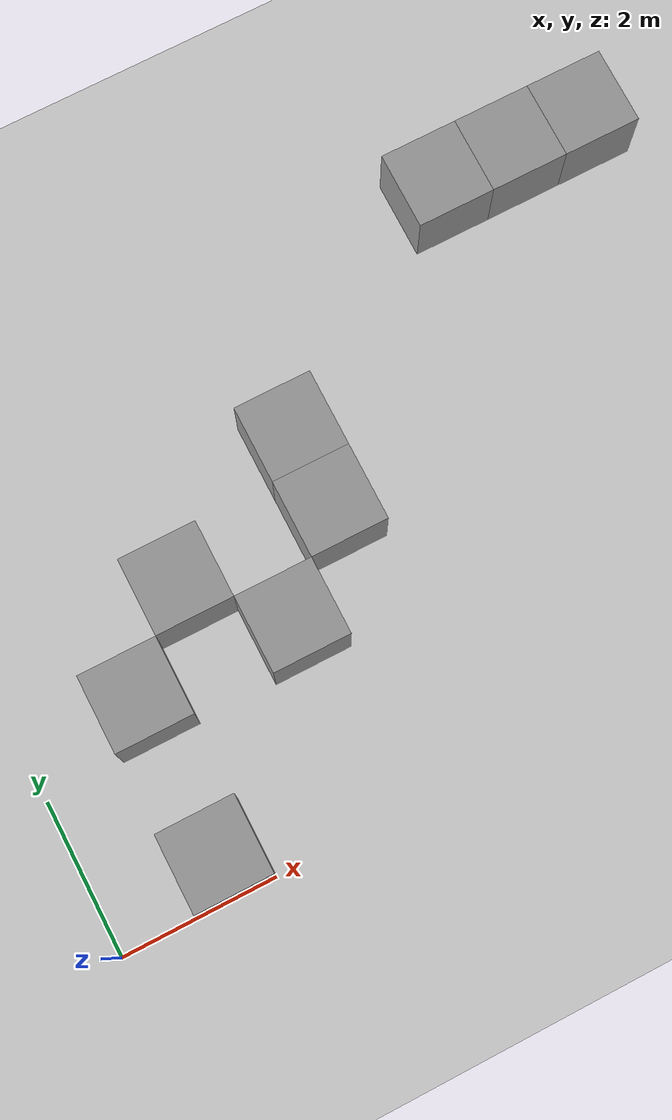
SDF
<sdf version="1.6">
 <world name="default">
  <light name="sun" type="directional">
   <pose>0 0 10 0 -0 0</pose>
   <diffuse>0.8 0.8 0.8 1</diffuse>
   <specular>0.1 0.1 0.1 1</specular>
   <attenuation>
    <range>1000</range>
    <constant>0.9</constant>
    <linear>0.01</linear>
    <quadratic>0.001</quadratic>
   </attenuation>
   <direction>-0.5 0.5 -1</direction>
  </light>
  <model name="ground_plane">
   <static>1</static>
   <link name="link">
    <collision name="collision">
     <geometry><plane><normal>0 0 1</normal><size>100 100</size></plane></geometry>
     <surface><friction><ode><mu>100</mu><mu2>50</mu2></ode></friction></surface>
    </collision>
    <visual name="visual">
     <cast_shadows>0</cast_shadows>
     <geometry><plane><normal>0 0 1</normal><size>100 100</size></plane></geometry>
     <material>
      <script><uri>file://media/materials/scripts/gazebo.material</uri><name>Gazebo/Grey</name></script>
     </material>
    </visual>
   </link>
  </model>
  <gravity>0 0 -9.8</gravity>
  <magnetic_field>6e-06 2.3e-05 -4.2e-05</magnetic_field>
  <atmosphere type="adiabatic"/>
  <physics name="default_physics" default="0" type="ode">
   <max_step_size>0.001</max_step_size>
   <real_time_factor>1</real_time_factor>
   <real_time_update_rate>1000</real_time_update_rate>
  </physics>
  <scene><ambient>0.4 0.4 0.4 1</ambient><background>0.7 0.7 0.7 1</background><shadows>1</shadows></scene>
  <spherical_coordinates>
   <surface_model>EARTH_WGS84</surface_model>
   <latitude_deg>0</latitude_deg>
   <longitude_deg>0</longitude_deg>
   <elevation>0</elevation>
   <heading_deg>0</heading_deg>
  </spherical_coordinates>
  <light name="user_point_light_0" type="point">
   <pose>4.8795 4.19874 1 0 -0 0</pose>
   <diffuse>0.5 0.5 0.5 1</diffuse>
   <specular>0.1 0.1 0.1 1</specular>
   <attenuation>
    <range>20</range>
    <constant>0.5</constant>
    <linear>0.01</linear>
    <quadratic>0.001</quadratic>
   </attenuation>
   <cast_shadows>0</cast_shadows>
   <direction>0 0 -1</direction>
  </light>
  <model name="unit_box_0">
   <pose>1.49999 0.5 0.499995 0 -1e-05 0</pose>
   <link name="link">
    <inertial>
     <mass>1</mass>
     <inertia>
      <ixx>0.166667</ixx>
      <ixy>0</ixy>
      <ixz>0</ixz>
      <iyy>0.166667</iyy>
      <iyz>0</iyz>
      <izz>0.166667</izz>
     </inertia>
    </inertial>
    <collision name="collision"><geometry><box><size>1 1 1</size></box></geometry></collision>
    <visual name="visual">
     <geometry><box><size>1 1 1</size></box></geometry>
     <material>
      <script><name>Gazebo/Grey</name><uri>file://media/materials/scripts/gazebo.material</uri></script>
     </material>
    </visual>
   </link>
  </model>
  <model name="unit_box_1">
   <pose>1.5 2.49999 0.499995 0 -1e-05 -1.5e-05</pose>
   <link name="link">
    <inertial>
     <mass>1</mass>
     <inertia>
      <ixx>0.166667</ixx>
      <ixy>0</ixy>
      <ixz>0</ixz>
      <iyy>0.166667</iyy>
      <iyz>0</iyz>
      <izz>0.166667</izz>
     </inertia>
    </inertial>
    <collision name="collision"><geometry><box><size>1 1 1</size></box></geometry></collision>
    <visual name="visual">
     <geometry><box><size>1 1 1</size></box></geometry>
     <material>
      <script><name>Gazebo/Grey</name><uri>file://media/materials/scripts/gazebo.material</uri></script>
     </material>
    </visual>
   </link>
  </model>
  <model name="unit_box_2">
   <pose>2.50001 3.49998 0.499995 0 1e-05 -1.4e-05</pose>
   <link name="link">
    <inertial>
     <mass>1</mass>
     <inertia>
      <ixx>0.166667</ixx>
      <ixy>0</ixy>
      <ixz>0</ixz>
      <iyy>0.166667</iyy>
      <iyz>0</iyz>
      <izz>0.166667</izz>
     </inertia>
    </inertial>
    <collision name="collision"><geometry><box><size>1 1 1</size></box></geometry></collision>
    <visual name="visual">
     <geometry><box><size>1 1 1</size></box></geometry>
     <material>
      <script><name>Gazebo/Grey</name><uri>file://media/materials/scripts/gazebo.material</uri></script>
     </material>
    </visual>
   </link>
  </model>
  <model name="unit_box_3">
   <pose>3.50001 2.5 0.5 0 -0 5e-06</pose>
   <link name="link">
    <inertial>
     <mass>1</mass>
     <inertia>
      <ixx>0.166667</ixx>
      <ixy>0</ixy>
      <ixz>0</ixz>
      <iyy>0.166667</iyy>
      <iyz>0</iyz>
      <izz>0.166667</izz>
     </inertia>
    </inertial>
    <collision name="collision"><geometry><box><size>1 1 1</size></box></geometry></collision>
    <visual name="visual">
     <geometry><box><size>1 1 1</size></box></geometry>
     <material>
      <script><name>Gazebo/Grey</name><uri>file://media/materials/scripts/gazebo.material</uri></script>
     </material>
    </visual>
   </link>
  </model>
  <model name="unit_box_4">
   <pose>4.5 4.5 0.5 0 0 -1e-06</pose>
   <link name="link">
    <inertial>
     <mass>1</mass>
     <inertia>
      <ixx>0.166667</ixx>
      <ixy>0</ixy>
      <ixz>0</ixz>
      <iyy>0.166667</iyy>
      <iyz>0</iyz>
      <izz>0.166667</izz>
     </inertia>
    </inertial>
    <collision name="collision"><geometry><box><size>1 1 1</size></box></geometry></collision>
    <visual name="visual">
     <geometry><box><size>1 1 1</size></box></geometry>
     <material>
      <script><name>Gazebo/Grey</name><uri>file://media/materials/scripts/gazebo.material</uri></script>
     </material>
    </visual>
   </link>
  </model>
  <model name="unit_box_5">
   <pose>4.50001 3.5 0.5 0 0 -1e-06</pose>
   <link name="link">
    <inertial>
     <mass>1</mass>
     <inertia>
      <ixx>0.166667</ixx>
      <ixy>0</ixy>
      <ixz>0</ixz>
      <iyy>0.166667</iyy>
      <iyz>0</iyz>
      <izz>0.166667</izz>
     </inertia>
    </inertial>
    <collision name="collision"><geometry><box><size>1 1 1</size></box></geometry></collision>
    <visual name="visual">
     <geometry><box><size>1 1 1</size></box></geometry>
     <material>
      <script><name>Gazebo/Grey</name><uri>file://media/materials/scripts/gazebo.material</uri></script>
     </material>
    </visual>
   </link>
  </model>
  <model name="unit_box_6">
   <pose>7.5 6.49999 0.499995 1e-05 -0 3e-06</pose>
   <link name="link">
    <inertial>
     <mass>1</mass>
     <inertia>
      <ixx>0.166667</ixx>
      <ixy>0</ixy>
      <ixz>0</ixz>
      <iyy>0.166667</iyy>
      <iyz>0</iyz>
      <izz>0.166667</izz>
     </inertia>
    </inertial>
    <collision name="collision"><geometry><box><size>1 1 1</size></box></geometry></collision>
    <visual name="visual">
     <geometry><box><size>1 1 1</size></box></geometry>
     <material>
      <script><name>Gazebo/Grey</name><uri>file://media/materials/scripts/gazebo.material</uri></script>
     </material>
    </visual>
   </link>
  </model>
  <model name="unit_box_7">
   <pose>8.5 6.49999 0.499995 1e-05 -0 0</pose>
   <link name="link">
    <inertial>
     <mass>1</mass>
     <inertia>
      <ixx>0.166667</ixx>
      <ixy>0</ixy>
      <ixz>0</ixz>
      <iyy>0.166667</iyy>
      <iyz>0</iyz>
      <izz>0.166667</izz>
     </inertia>
    </inertial>
    <collision name="collision"><geometry><box><size>1 1 1</size></box></geometry></collision>
    <visual name="visual">
     <geometry><box><size>1 1 1</size></box></geometry>
     <material>
      <script><name>Gazebo/Grey</name><uri>file://media/materials/scripts/gazebo.material</uri></script>
     </material>
    </visual>
   </link>
  </model>
  <model name="unit_box_8">
   <pose>9.5 6.5 0.5 0 -0 0</pose>
   <link name="link">
    <inertial>
     <mass>1</mass>
     <inertia>
      <ixx>0.166667</ixx>
      <ixy>0</ixy>
      <ixz>0</ixz>
      <iyy>0.166667</iyy>
      <iyz>0</iyz>
      <izz>0.166667</izz>
     </inertia>
    </inertial>
    <collision name="collision"><geometry><box><size>1 1 1</size></box></geometry></collision>
    <visual name="visual">
     <geometry><box><size>1 1 1</size></box></geometry>
     <material>
      <script><name>Gazebo/Grey</name><uri>file://media/materials/scripts/gazebo.material</uri></script>
     </material>
    </visual>
   </link>
  </model>
 </world>
</sdf>
